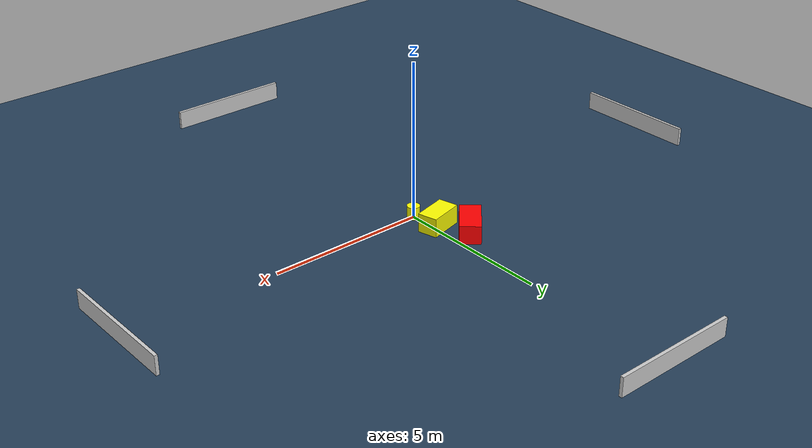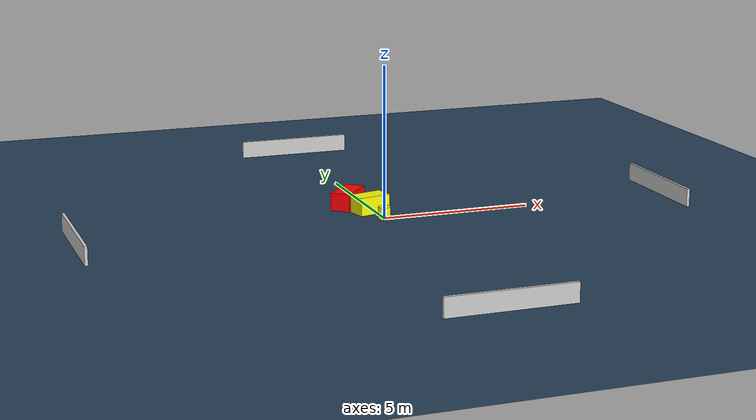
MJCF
<?xml version="1.0" ?>
<mujoco model="generated_environment">
  <option timestep="0.01" integrator="RK4" cone="elliptic"/>
  <default>
    <geom density="1"/>
  </default>
  <asset>
    <texture builtin="gradient" height="3072" name="skybox" rgb1="0.3 0.5 0.7" rgb2="0 0 0" type="skybox" width="512"/>
    <texture builtin="checker" height="300" name="groundplane" rgb1="0.2 0.3 0.4" rgb2="0.1 0.2 0.3" type="2d" width="300"/>
    <material name="groundplane" reflectance="0.2" texrepeat="5 5" texture="groundplane"/>
  </asset>
  <worldbody>
    <light dir="0 0 -1" directional="true" pos="0 0 1.5"/>
    <geom condim="3" friction="0.5 0.005 0.001" material="groundplane" name="floor" pos="0 0 0" size="0 0 0.05" type="plane"/>
    <body name="walls">
      <geom name="wall_1" condim="4" pos="-10.0 0.0 0.3" rgba="0.800000011920929 0.800000011920929 0.800000011920929 1.0" size="0.05 2.0 0.3" type="box"/>
      <geom name="wall_2" condim="4" pos="10.0 0.0 0.3" rgba="0.800000011920929 0.800000011920929 0.800000011920929 1.0" size="0.05 2.0 0.3" type="box"/>
      <geom name="wall_3" condim="4" pos="0.0 -10.0 0.3" rgba="0.800000011920929 0.800000011920929 0.800000011920929 1.0" size="2.0 0.05 0.3" type="box"/>
      <geom name="wall_4" condim="4" pos="0.0 10.0 0.3" rgba="0.800000011920929 0.800000011920929 0.800000011920929 1.0" size="2.0 0.05 0.3" type="box"/>
    </body>
    <body name="robot">
      <joint name="joint_x" type="slide" pos="0 0 0" axis="1 0 0"/>
      <joint name="joint_y" type="slide" pos="0 0 0" axis="0 1 0"/>
      <geom name="robot" type="cylinder" pos="0.0 0.0 0.2" size="0.2 0.2 0.0" mass="5.0" friction="1.0 0.005 0.0001" condim="4" rgba="1.0 1.0 0.0 1.0"/>
    </body>
    <body name="obstacle_1_movable">
      <geom name="obstacle_1_movable" condim="4" pos="-0.15631965217924898 0.930779780603483 0.3" euler="0 0 193.9782968400902" friction="0.0 0.005 0.001" rgba="1.0 1.0 0.0 1.0" size="0.5535038108680043 0.315834800562961 0.3" type="box" mass="0.1"/>
      <joint type="free"/>
    </body>
    <body name="obstacle_2_static">
      <geom name="obstacle_2_static" condim="4" pos="-0.6301431299194172 1.8280669090037813 0.3" euler="0 0 48.02270979301482" friction="0.0 0.005 0.001" rgba="1.0 0.0 0.0 1.0" size="0.6575070465566817 0.32695787342238347 0.3" type="box"/>
    </body>
  </worldbody>
  <actuator>
    <motor name="actuator_x" joint="joint_x" gear="1" ctrlrange="-1 1"/>
    <motor name="actuator_y" joint="joint_y" gear="1" ctrlrange="-1 1"/>
  </actuator>
</mujoco>
